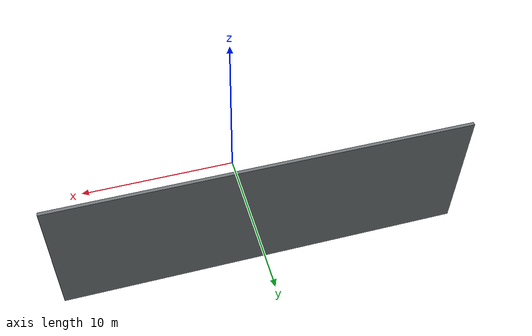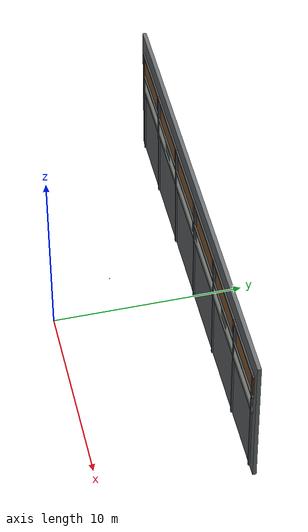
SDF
<sdf version="1.9">
 <world name="hangar_1_wall_pursuit">
  <model name="ground_plane">
   <static>true</static>
   <link name="link">
    <collision name="collision">
     <geometry><plane><normal>0 0 1</normal><size>24.0 15.0</size></plane></geometry>
    </collision>
   </link>
  </model>
  <model name="wall_east_inner_structure">
   <static>true</static>
   <pose>0 7.48 0 0 0 0</pose>
   <link name="link">
    <visual name="clerestory_white_panel_1">
     <pose>-9.0 0 4.85 0 0 0</pose>
     <geometry><box><size>5.0 0.035 0.8</size></box></geometry>
     <material>
      <ambient>0.92 0.92 0.88 1</ambient>
      <diffuse>0.92 0.92 0.88 1</diffuse>
      <emissive>0.18 0.18 0.16 1</emissive>
     </material>
    </visual>
    <visual name="clerestory_white_panel_2">
     <pose>-3.0 0 4.85 0 0 0</pose>
     <geometry><box><size>5.0 0.035 0.8</size></box></geometry>
     <material>
      <ambient>0.92 0.92 0.88 1</ambient>
      <diffuse>0.92 0.92 0.88 1</diffuse>
      <emissive>0.18 0.18 0.16 1</emissive>
     </material>
    </visual>
    <visual name="clerestory_white_panel_3">
     <pose>3.0 0 4.85 0 0 0</pose>
     <geometry><box><size>5.0 0.035 0.8</size></box></geometry>
     <material>
      <ambient>0.92 0.92 0.88 1</ambient>
      <diffuse>0.92 0.92 0.88 1</diffuse>
      <emissive>0.18 0.18 0.16 1</emissive>
     </material>
    </visual>
    <visual name="clerestory_white_panel_4">
     <pose>9.0 0 4.85 0 0 0</pose>
     <geometry><box><size>5.0 0.035 0.8</size></box></geometry>
     <material>
      <ambient>0.92 0.92 0.88 1</ambient>
      <diffuse>0.92 0.92 0.88 1</diffuse>
      <emissive>0.18 0.18 0.16 1</emissive>
     </material>
    </visual>
    <visual name="louver_panel_1">
     <pose>-10.0 0 6.25 0 0 0</pose>
     <geometry><box><size>3.2 0.04 1.1</size></box></geometry>
     <material>
      <ambient>0.58 0.39 0.22 1</ambient>
      <diffuse>0.58 0.39 0.22 1</diffuse>
      <specular>0.08 0.06 0.04 1</specular>
     </material>
    </visual>
    <visual name="louver_panel_2">
     <pose>-6.0 0 6.25 0 0 0</pose>
     <geometry><box><size>3.2 0.04 1.1</size></box></geometry>
     <material>
      <ambient>0.58 0.39 0.22 1</ambient>
      <diffuse>0.58 0.39 0.22 1</diffuse>
      <specular>0.08 0.06 0.04 1</specular>
     </material>
    </visual>
    <visual name="louver_panel_3">
     <pose>-2.0 0 6.25 0 0 0</pose>
     <geometry><box><size>3.2 0.04 1.1</size></box></geometry>
     <material>
      <ambient>0.58 0.39 0.22 1</ambient>
      <diffuse>0.58 0.39 0.22 1</diffuse>
      <specular>0.08 0.06 0.04 1</specular>
     </material>
    </visual>
    <visual name="louver_panel_4">
     <pose>2.0 0 6.25 0 0 0</pose>
     <geometry><box><size>3.2 0.04 1.1</size></box></geometry>
     <material>
      <ambient>0.58 0.39 0.22 1</ambient>
      <diffuse>0.58 0.39 0.22 1</diffuse>
      <specular>0.08 0.06 0.04 1</specular>
     </material>
    </visual>
    <visual name="louver_panel_5">
     <pose>6.0 0 6.25 0 0 0</pose>
     <geometry><box><size>3.2 0.04 1.1</size></box></geometry>
     <material>
      <ambient>0.58 0.39 0.22 1</ambient>
      <diffuse>0.58 0.39 0.22 1</diffuse>
      <specular>0.08 0.06 0.04 1</specular>
     </material>
    </visual>
    <visual name="louver_panel_6">
     <pose>10.0 0 6.25 0 0 0</pose>
     <geometry><box><size>3.2 0.04 1.1</size></box></geometry>
     <material>
      <ambient>0.58 0.39 0.22 1</ambient>
      <diffuse>0.58 0.39 0.22 1</diffuse>
      <specular>0.08 0.06 0.04 1</specular>
     </material>
    </visual>
    <visual name="frame_post_1">
     <pose>-11.4 0 3.55 0 0 0</pose>
     <geometry><box><size>0.14 0.12 6.9</size></box></geometry>
     <material>
      <ambient>0.34 0.36 0.37 1</ambient>
      <diffuse>0.34 0.36 0.37 1</diffuse>
      <specular>0.25 0.25 0.25 1</specular>
     </material>
    </visual>
    <visual name="frame_post_2">
     <pose>-8.0 0 3.55 0 0 0</pose>
     <geometry><box><size>0.14 0.12 6.9</size></box></geometry>
     <material>
      <ambient>0.34 0.36 0.37 1</ambient>
      <diffuse>0.34 0.36 0.37 1</diffuse>
      <specular>0.25 0.25 0.25 1</specular>
     </material>
    </visual>
    <visual name="frame_post_3">
     <pose>-4.0 0 3.55 0 0 0</pose>
     <geometry><box><size>0.14 0.12 6.9</size></box></geometry>
     <material>
      <ambient>0.34 0.36 0.37 1</ambient>
      <diffuse>0.34 0.36 0.37 1</diffuse>
      <specular>0.25 0.25 0.25 1</specular>
     </material>
    </visual>
    <visual name="frame_post_4">
     <pose>0 0 3.55 0 0 0</pose>
     <geometry><box><size>0.14 0.12 6.9</size></box></geometry>
     <material>
      <ambient>0.34 0.36 0.37 1</ambient>
      <diffuse>0.34 0.36 0.37 1</diffuse>
      <specular>0.25 0.25 0.25 1</specular>
     </material>
    </visual>
    <visual name="frame_post_5">
     <pose>4.0 0 3.55 0 0 0</pose>
     <geometry><box><size>0.14 0.12 6.9</size></box></geometry>
     <material>
      <ambient>0.34 0.36 0.37 1</ambient>
      <diffuse>0.34 0.36 0.37 1</diffuse>
      <specular>0.25 0.25 0.25 1</specular>
     </material>
    </visual>
    <visual name="frame_post_6">
     <pose>8.0 0 3.55 0 0 0</pose>
     <geometry><box><size>0.14 0.12 6.9</size></box></geometry>
     <material>
      <ambient>0.34 0.36 0.37 1</ambient>
      <diffuse>0.34 0.36 0.37 1</diffuse>
      <specular>0.25 0.25 0.25 1</specular>
     </material>
    </visual>
    <visual name="frame_post_7">
     <pose>11.4 0 3.55 0 0 0</pose>
     <geometry><box><size>0.14 0.12 6.9</size></box></geometry>
     <material>
      <ambient>0.34 0.36 0.37 1</ambient>
      <diffuse>0.34 0.36 0.37 1</diffuse>
      <specular>0.25 0.25 0.25 1</specular>
     </material>
    </visual>
    <visual name="frame_bottom_rail">
     <pose>0 0 4.38 0 0 0</pose>
     <geometry><box><size>23.2 0.12 0.12</size></box></geometry>
     <material>
      <ambient>0.34 0.36 0.37 1</ambient>
      <diffuse>0.34 0.36 0.37 1</diffuse>
      <specular>0.25 0.25 0.25 1</specular>
     </material>
    </visual>
    <visual name="frame_mid_rail">
     <pose>0 0 5.45 0 0 0</pose>
     <geometry><box><size>23.2 0.12 0.12</size></box></geometry>
     <material>
      <ambient>0.34 0.36 0.37 1</ambient>
      <diffuse>0.34 0.36 0.37 1</diffuse>
      <specular>0.25 0.25 0.25 1</specular>
     </material>
    </visual>
    <visual name="frame_top_rail">
     <pose>0 0 6.92 0 0 0</pose>
     <geometry><box><size>23.2 0.12 0.14</size></box></geometry>
     <material>
      <ambient>0.34 0.36 0.37 1</ambient>
      <diffuse>0.34 0.36 0.37 1</diffuse>
      <specular>0.25 0.25 0.25 1</specular>
     </material>
    </visual>
    <visual name="thin_red_pipe">
     <pose>0 -0.01 5.38 0 0 0</pose>
     <geometry><box><size>22.8 0.04 0.04</size></box></geometry>
     <material><ambient>0.45 0.12 0.07 1</ambient><diffuse>0.45 0.12 0.07 1</diffuse></material>
    </visual>
   </link>
  </model>
  <model name="wall_east">
   <static>true</static>
   <pose>0 7.6 4.0 0 0 0</pose>
   <link name="link">
    <collision name="c"><geometry><box><size>24.0 0.2 8.0</size></box></geometry></collision>
    <visual name="v">
     <geometry><box><size>24.0 0.2 8.0</size></box></geometry>
     <material>
      <ambient>0.42 0.44 0.45 1</ambient>
      <diffuse>0.42 0.44 0.45 1</diffuse>
      <specular>0.18 0.18 0.18 1</specular>
     </material>
    </visual>
   </link>
  </model>
  <include><uri>model://pigeon_3d</uri><name>pigeon_1</name><pose>0 3 2.5 0 0 0</pose></include>
 </world>
</sdf>
